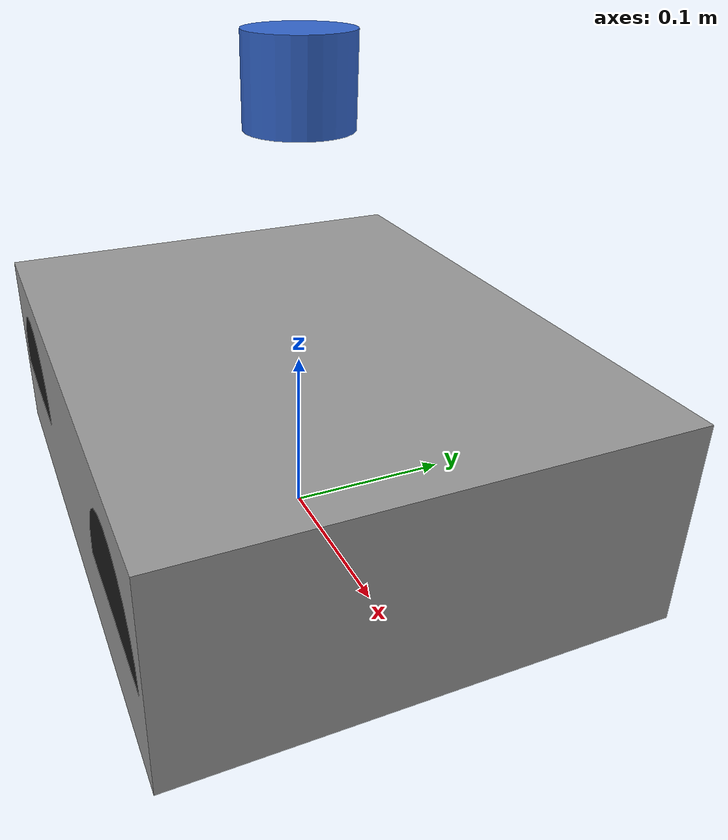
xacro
<?xml version="1.0"?>
<robot name="mr_robot" xmlns:xacro="http://ros.org/wiki/xacro">

    <xacro:property name="base_l" value="0.35"/>
    <xacro:property name="base_w" value="0.28"/>
    <xacro:property name="base_h" value="0.12"/>
    <xacro:property name="wheel_radius" value="0.05"/>
    <xacro:property name="wheel_width" value="0.02"/>
    <xacro:property name="wheel_sep" value="0.26"/>
    <xacro:property name="lidar_z" value="0.20"/>

    <xacro:macro name="inertial_box" params="m x y z">
        <inertial>
            <mass value="${m}"/>
            <origin xyz="0 0 0"/>
            <inertia
                ixx="${(1/12.0)*m*(y*y + z*z)}"
                iyy="${(1/12.0)*m*(x*x + z*z)}"
                izz="${(1/12.0)*m*(y*y + x*x)}"
                ixy="0" ixz="0" iyz="0"/>
        </inertial>
    </xacro:macro>

    <!-- Frames -->

    <link name="base_footprint"/>
    <joint name="base_footprint_joint" type="fixed">
        <parent link="base_footprint"/>
        <child link="base_link"/>
        <origin xyz="0 0 ${base_h/2.0}" rpy="0 0 0"/>
    </joint>

    <link name="base_link">
        <visual>
            <origin xyz="0 0 0" rpy="0 0 0"/>
            <geometry><box size="${base_l} ${base_w} ${base_h}"/></geometry>
            <material name="gray"><color rgba="0.6 0.6 0.6 1.0"/></material>
        </visual>
        <collision>
            <geometry><box size="${base_l} ${base_w} ${base_h}"/></geometry>
        </collision>
        <xacro:inertial_box m="5.0" x="${base_l}" y="${base_w}" z="${base_h}"/>
    </link>

    <!-- Wheels (cylinders rotate around Y axis) -->

    <xacro:macro name="wheel" params="name x y">
        <link name="${name}_link">
            <visual>
                <origin xyz="0 0 0" rpy="1.5708 0 0"/>
                <geometry><cylinder length="${wheel_width}" radius="${wheel_radius}"/></geometry>
                <material name="black"><color rgba="0.1 0.1 0.1 1"/></material>
            </visual>
            <collision>
                <origin xyz="0 0 0" rpy="1.5708 0 0"/>
                <geometry><cylinder length="${wheel_width}" radius="${wheel_radius}"/></geometry>
            </collision>
            <inertial>
                <mass value="0.2"/>
                <inertia ixx="0.0005" iyy="0.0005" izz="0.0005" ixy="0" ixz="0" iyz="0"/>
            </inertial>
        </link>
        <joint name="${name}_joint" type="continuous">
            <parent link="base_link"/>
            <child  link="${name}_link"/>
            <origin xyz="${x} ${y} -${base_h/2.0 - wheel_radius}" rpy="0 0 0"/>
            <axis xyz="0 1 0"/>
        </joint>
    </xacro:macro>

    <!-- Wheel positions -->

    <xacro:wheel name="fl_wheel" x="${ base_l/2.0 - 0.06}" y="${ wheel_sep/2.0}"/>
    <xacro:wheel name="fr_wheel" x="${ base_l/2.0 - 0.06}" y="-${wheel_sep/2.0}"/>
    <xacro:wheel name="bl_wheel" x="-${base_l/2.0 - 0.06}" y="${ wheel_sep/2.0}"/>
    <xacro:wheel name="br_wheel" x="-${base_l/2.0 - 0.06}" y="-${wheel_sep/2.0}"/>

      <!-- LiDAR -->

    <link name="lidar_link">
      <visual>
        <origin xyz="0 0 0" rpy="0 0 0"/>
        <geometry><cylinder length="0.05" radius="0.03"/></geometry>
        <material name="blue"><color rgba="0.2 0.4 0.8 1"/></material>
      </visual>
      <collision>
        <geometry><cylinder length="0.05" radius="0.03"/></geometry>
      </collision>
      <inertial><mass value="0.2"/><inertia ixx="1e-4" iyy="1e-4" izz="1e-4" ixy="0" ixz="0" iyz="0"/></inertial>
    </link>
    <joint name="lidar_joint" type="fixed">
      <parent link="base_link"/>
      <child  link="lidar_link"/>
      <origin xyz="0 0 ${lidar_z}" rpy="0 0 0"/>
    </joint>

    <!-- IMU -->

    <link name="imu_link"><inertial><mass value="0.05"/><inertia ixx="5e-5" iyy="5e-5" izz="5e-5" ixy="0" ixz="0" iyz="0"/></inertial></link>
    <joint name="imu_joint" type="fixed">
      <parent link="base_link"/><child link="imu_link"/>
      <origin xyz="0 0 ${base_h/2.0 - 0.02}" rpy="0 0 0"/>
    </joint>

    <!-- Gazebo plugins (Classic) -->
    <gazebo>
      <plugin name="diff_drive" filename="libgazebo_ros_diff_drive.so">
        <ros>
          <remapping>cmd_vel:=cmd_vel</remapping>
          <remapping>odom:=odom</remapping>
        </ros>
        <update_rate>50</update_rate>
        <left_joint>fl_wheel_joint</left_joint>
        <left_joint>bl_wheel_joint</left_joint>
        <right_joint>fr_wheel_joint</right_joint>
        <right_joint>br_wheel_joint</right_joint>
        <wheel_separation>${wheel_sep}</wheel_separation>
        <wheel_diameter>${2*wheel_radius}</wheel_diameter>
        <publish_odom>true</publish_odom>
        <publish_tf>true</publish_tf>
        <odometry_frame>odom</odometry_frame>
        <robot_base_frame>base_footprint</robot_base_frame>
        <command_topic>cmd_vel</command_topic>
        <odometry_topic>odom</odometry_topic>
        <velocity_decay>0.0</velocity_decay>
      </plugin>
    </gazebo>

    <!-- LiDAR sensor -->

    <gazebo reference="lidar_link">
      <sensor name="lidar" type="ray">
        <update_rate>15</update_rate>
        <ray>
          <scan><horizontal><samples>720</samples><resolution>1</resolution><min_angle>-3.14159</min_angle><max_angle>3.14159</max_angle></horizontal></scan>
          <range><min>0.12</min><max>8.0</max></range>
          <noise><type>gaussian</type><mean>0.0</mean><stddev>0.005</stddev></noise>
        </ray>
        <plugin name="gazebo_ros_laser" filename="libgazebo_ros_ray_sensor.so">
          <ros><remapping>scan:=scan</remapping></ros>
          <frame_name>lidar_link</frame_name>
        </plugin>
      </sensor>
    </gazebo>

    <!-- IMU sensor -->

    <gazebo reference="imu_link">
      <sensor name="imu_sensor" type="imu">
        <update_rate>100</update_rate>
        <plugin name="imu_plugin" filename="libgazebo_ros_imu_sensor.so">
          <ros><remapping>imu:=imu/data</remapping></ros>
          <frame_name>imu_link</frame_name>
        </plugin>
      </sensor>
    </gazebo>

</robot>
